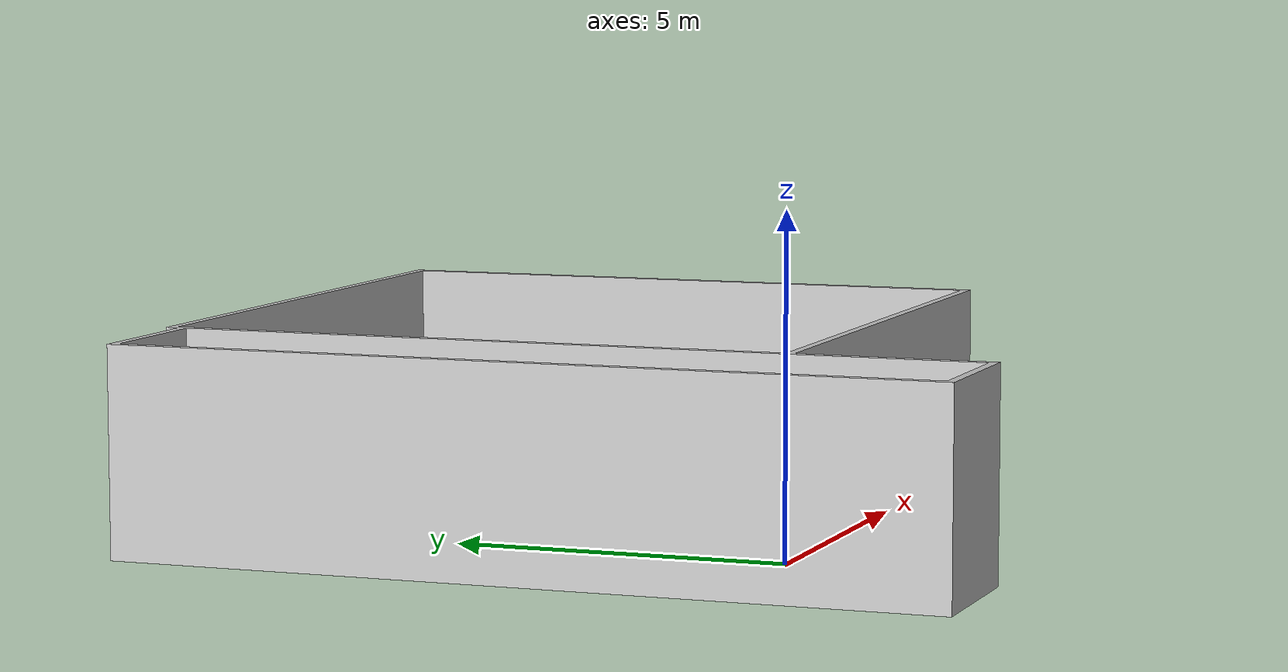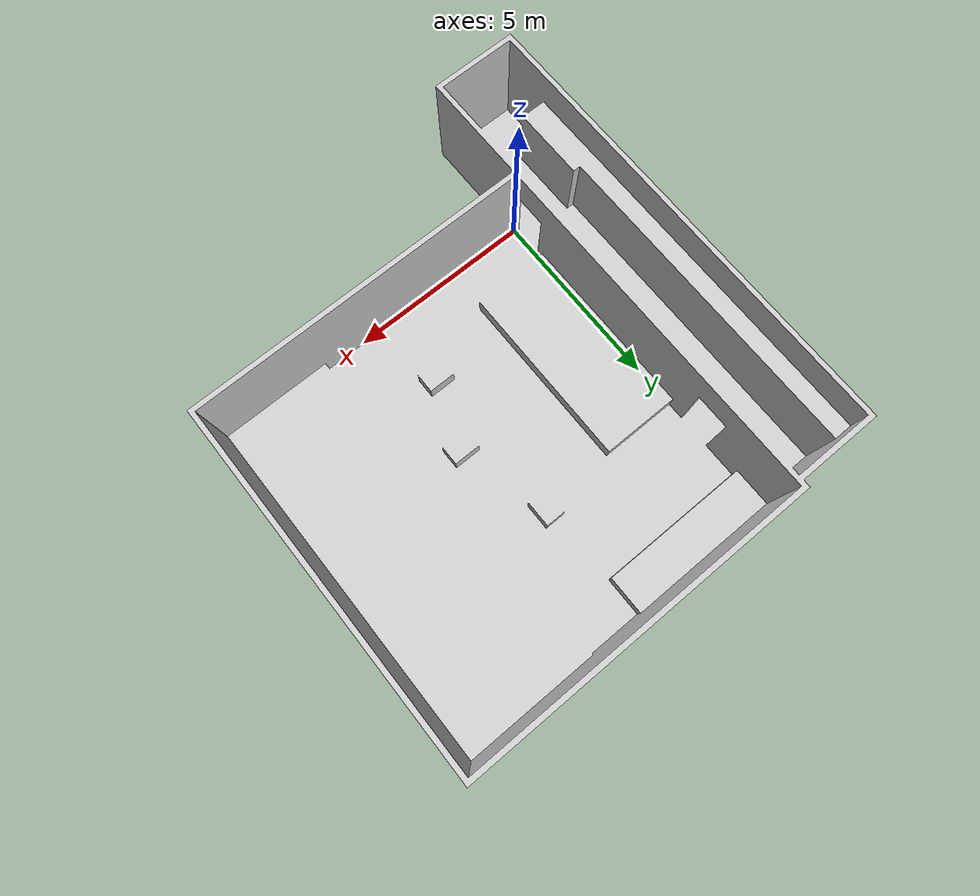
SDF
<?xml version='1.0' encoding='utf-8'?>
<sdf version="1.6">
  <model name="shopee_map">
    <static>true</static>
    <link name="shopee_link">
      <pose>0 0 0 1.5708 0 0</pose>

      <visual name="shopee_visual">
        <geometry>
          <mesh>
            <uri>/home/wonho/tech_research/Shopee/shopee_ros2/src/pickee_mobile_wonho/models/shopee_map/meshes/shopee_map2.obj</uri>
          </mesh>
        </geometry>
        <material>
          <ambient>1 1 1 1</ambient>
          <diffuse>0.8 0.8 0.8 1</diffuse>
        </material>
      </visual>
      <collision name="shopee_collision">
        <geometry>
          <mesh>
            <uri>/home/wonho/tech_research/Shopee/shopee_ros2/src/pickee_mobile_wonho/models/shopee_map/meshes/shopee_map2.obj</uri>
          </mesh>
        </geometry>
      </collision>
    </link>
  </model>
</sdf>
